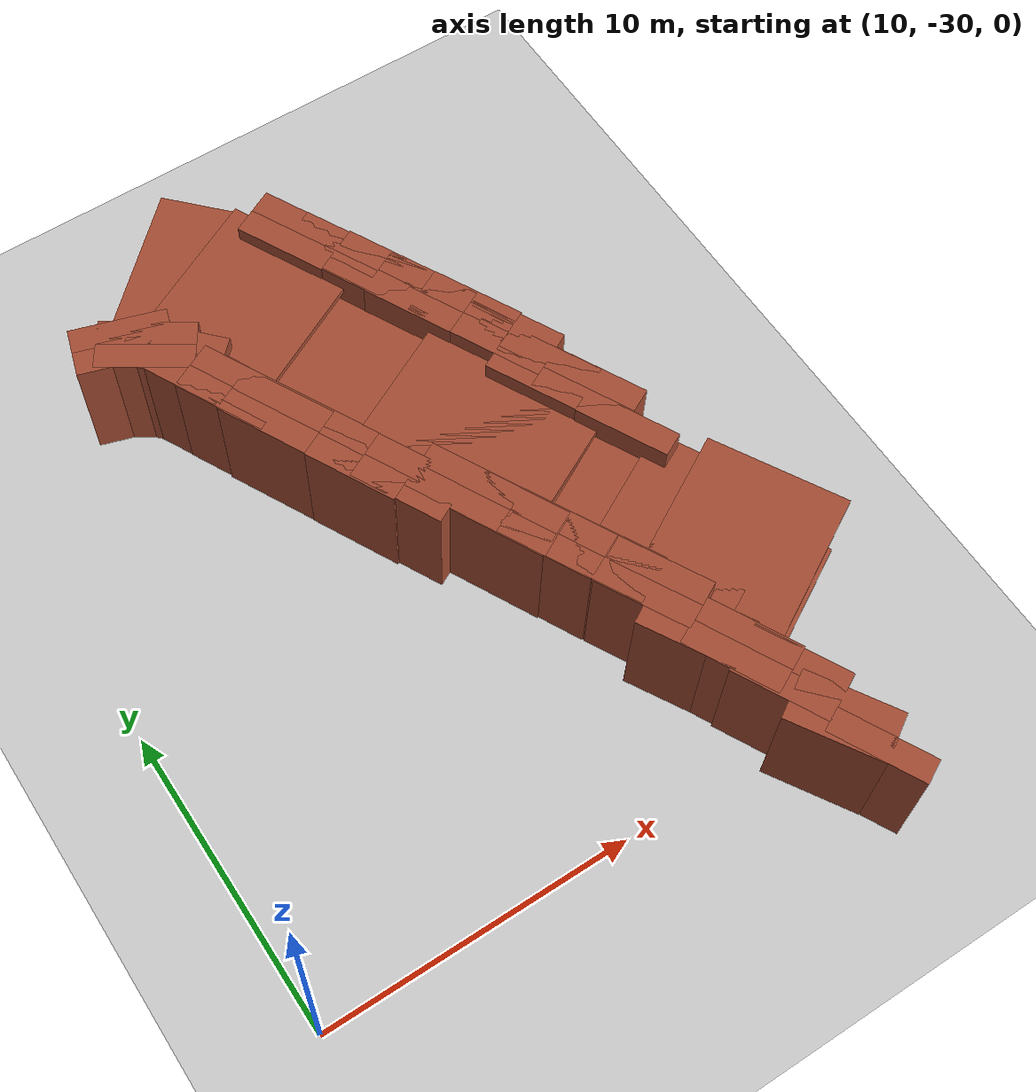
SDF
<sdf version="1.6">
 <world name="procedural_cave_world">
  <include><uri>model://sun</uri></include>
  <include><uri>model://ground_plane</uri></include>
  <model name="procedural_cave">
   <static>true</static>
   <link name="right_wall_12">
    <pose>15.39203124520622 -9.885224673144089 1.5 0 0 -0.30000000000000004</pose>
    <collision name="collision"><geometry><box><size>3.0 0.8 5.0</size></box></geometry></collision>
    <visual name="visual">
     <geometry><box><size>3.0 0.8 5.0</size></box></geometry>
     <material>
      <script><uri>file://media/materials/scripts/gazebo.material</uri><name>Gazebo/Bricks</name></script>
     </material>
    </visual>
   </link>
   <link name="fill_right_12">
    <pose>15.155615079877146 -10.649493864444572 1.5 0 0 -0.30000000000000004</pose>
    <collision name="collision"><geometry><box><size>3.0 0.8 5.0</size></box></geometry></collision>
    <visual name="visual">
     <geometry><box><size>3.0 0.8 5.0</size></box></geometry>
     <material>
      <script><uri>file://media/materials/scripts/gazebo.material</uri><name>Gazebo/Bricks</name></script>
     </material>
    </visual>
   </link>
   <link name="right_wall_13">
    <pose>16.044018681223694 -10.396611991949012 1.5 0 0 -0.5799482193392328</pose>
    <collision name="collision"><geometry><box><size>3.0 0.8 5.0</size></box></geometry></collision>
    <visual name="visual">
     <geometry><box><size>3.0 0.8 5.0</size></box></geometry>
     <material>
      <script><uri>file://media/materials/scripts/gazebo.material</uri><name>Gazebo/Bricks</name></script>
     </material>
    </visual>
   </link>
   <link name="fill_right_13">
    <pose>15.605634182448908 -11.0658048126173 1.5 0 0 -0.5799482193392328</pose>
    <collision name="collision"><geometry><box><size>3.0 0.8 5.0</size></box></geometry></collision>
    <visual name="visual">
     <geometry><box><size>3.0 0.8 5.0</size></box></geometry>
     <material>
      <script><uri>file://media/materials/scripts/gazebo.material</uri><name>Gazebo/Bricks</name></script>
     </material>
    </visual>
   </link>
   <link name="right_wall_14">
    <pose>16.69132183761761 -11.09571935512386 1.5 0 0 -0.8084657183683084</pose>
    <collision name="collision"><geometry><box><size>3.0 0.8 5.0</size></box></geometry></collision>
    <visual name="visual">
     <geometry><box><size>3.0 0.8 5.0</size></box></geometry>
     <material>
      <script><uri>file://media/materials/scripts/gazebo.material</uri><name>Gazebo/Bricks</name></script>
     </material>
    </visual>
   </link>
   <link name="fill_right_14">
    <pose>16.112739087608567 -11.648206460305484 1.5 0 0 -0.8084657183683084</pose>
    <collision name="collision"><geometry><box><size>3.0 0.8 5.0</size></box></geometry></collision>
    <visual name="visual">
     <geometry><box><size>3.0 0.8 5.0</size></box></geometry>
     <material>
      <script><uri>file://media/materials/scripts/gazebo.material</uri><name>Gazebo/Bricks</name></script>
     </material>
    </visual>
   </link>
   <link name="ceiling_14">
    <pose>18.403966095796005 -9.460319978989473 3.3997649075077114 0 0 -0.8084657183683084</pose>
    <collision name="collision"><geometry><box><size>4.5 5.736108729550944 0.2</size></box></geometry></collision>
    <visual name="visual">
     <geometry><box><size>4.5 5.736108729550944 0.2</size></box></geometry>
     <material>
      <script><uri>file://media/materials/scripts/gazebo.material</uri><name>Gazebo/Bricks</name></script>
     </material>
    </visual>
   </link>
   <link name="floor_14">
    <pose>18.403966095796005 -9.460319978989473 0.1 0 0 -0.8084657183683084</pose>
    <collision name="collision"><geometry><box><size>4.5 5.736108729550944 0.2</size></box></geometry></collision>
    <visual name="visual">
     <geometry><box><size>4.5 5.736108729550944 0.2</size></box></geometry>
     <material>
      <script><uri>file://media/materials/scripts/gazebo.material</uri><name>Gazebo/Bricks</name></script>
     </material>
    </visual>
   </link>
   <link name="left_wall_15">
    <pose>21.229944795965153 -9.705096932309226 1.5 0 0 -1.1</pose>
    <collision name="collision"><geometry><box><size>3.0 0.8 5.0</size></box></geometry></collision>
    <visual name="visual">
     <geometry><box><size>3.0 0.8 5.0</size></box></geometry>
     <material>
      <script><uri>file://media/materials/scripts/gazebo.material</uri><name>Gazebo/Bricks</name></script>
     </material>
    </visual>
   </link>
   <link name="right_wall_15">
    <pose>16.938775759903585 -11.889165105854024 1.5 0 0 -1.1</pose>
    <collision name="collision"><geometry><box><size>3.0 0.8 5.0</size></box></geometry></collision>
    <visual name="visual">
     <geometry><box><size>3.0 0.8 5.0</size></box></geometry>
     <material>
      <script><uri>file://media/materials/scripts/gazebo.material</uri><name>Gazebo/Bricks</name></script>
     </material>
    </visual>
   </link>
   <link name="fill_left_15">
    <pose>21.9429106840143 -9.342220035168765 1.5 0 0 -1.1</pose>
    <collision name="collision"><geometry><box><size>3.0 0.8 5.0</size></box></geometry></collision>
    <visual name="visual">
     <geometry><box><size>3.0 0.8 5.0</size></box></geometry>
     <material>
      <script><uri>file://media/materials/scripts/gazebo.material</uri><name>Gazebo/Bricks</name></script>
     </material>
    </visual>
   </link>
   <link name="fill_right_15">
    <pose>16.225809871854437 -12.252042002994486 1.5 0 0 -1.1</pose>
    <collision name="collision"><geometry><box><size>3.0 0.8 5.0</size></box></geometry></collision>
    <visual name="visual">
     <geometry><box><size>3.0 0.8 5.0</size></box></geometry>
     <material>
      <script><uri>file://media/materials/scripts/gazebo.material</uri><name>Gazebo/Bricks</name></script>
     </material>
    </visual>
   </link>
   <link name="ceiling_15">
    <pose>19.08436027793437 -10.797131019081625 3.399858944504627 0 0 -1.1</pose>
    <collision name="collision"><geometry><box><size>4.5 5.815006280654769 0.2</size></box></geometry></collision>
    <visual name="visual">
     <geometry><box><size>4.5 5.815006280654769 0.2</size></box></geometry>
     <material>
      <script><uri>file://media/materials/scripts/gazebo.material</uri><name>Gazebo/Bricks</name></script>
     </material>
    </visual>
   </link>
   <link name="floor_15">
    <pose>19.08436027793437 -10.797131019081625 0.1 0 0 -1.1</pose>
    <collision name="collision"><geometry><box><size>4.5 5.815006280654769 0.2</size></box></geometry></collision>
    <visual name="visual">
     <geometry><box><size>4.5 5.815006280654769 0.2</size></box></geometry>
     <material>
      <script><uri>file://media/materials/scripts/gazebo.material</uri><name>Gazebo/Bricks</name></script>
     </material>
    </visual>
   </link>
   <link name="left_wall_16">
    <pose>21.924622003105284 -11.034638368229148 1.5 0 0 -1.1</pose>
    <collision name="collision"><geometry><box><size>3.0 0.8 5.0</size></box></geometry></collision>
    <visual name="visual">
     <geometry><box><size>3.0 0.8 5.0</size></box></geometry>
     <material>
      <script><uri>file://media/materials/scripts/gazebo.material</uri><name>Gazebo/Bricks</name></script>
     </material>
    </visual>
   </link>
   <link name="right_wall_16">
    <pose>17.604886917040183 -13.233245750118408 1.5 0 0 -1.1</pose>
    <collision name="collision"><geometry><box><size>3.0 0.8 5.0</size></box></geometry></collision>
    <visual name="visual">
     <geometry><box><size>3.0 0.8 5.0</size></box></geometry>
     <material>
      <script><uri>file://media/materials/scripts/gazebo.material</uri><name>Gazebo/Bricks</name></script>
     </material>
    </visual>
   </link>
   <link name="fill_left_16">
    <pose>22.637587891154432 -10.671761471088686 1.5 0 0 -1.1</pose>
    <collision name="collision"><geometry><box><size>3.0 0.8 5.0</size></box></geometry></collision>
    <visual name="visual">
     <geometry><box><size>3.0 0.8 5.0</size></box></geometry>
     <material>
      <script><uri>file://media/materials/scripts/gazebo.material</uri><name>Gazebo/Bricks</name></script>
     </material>
    </visual>
   </link>
   <link name="fill_right_16">
    <pose>16.891921028991035 -13.59612264725887 1.5 0 0 -1.1</pose>
    <collision name="collision"><geometry><box><size>3.0 0.8 5.0</size></box></geometry></collision>
    <visual name="visual">
     <geometry><box><size>3.0 0.8 5.0</size></box></geometry>
     <material>
      <script><uri>file://media/materials/scripts/gazebo.material</uri><name>Gazebo/Bricks</name></script>
     </material>
    </visual>
   </link>
   <link name="ceiling_16">
    <pose>19.764754460072734 -12.133942059173778 2.3920610211163402 0 0 -1.1</pose>
    <collision name="collision"><geometry><box><size>4.5 5.847059483179449 0.2</size></box></geometry></collision>
    <visual name="visual">
     <geometry><box><size>4.5 5.847059483179449 0.2</size></box></geometry>
     <material>
      <script><uri>file://media/materials/scripts/gazebo.material</uri><name>Gazebo/Bricks</name></script>
     </material>
    </visual>
   </link>
   <link name="floor_16">
    <pose>19.764754460072734 -12.133942059173778 0.1 0 0 -1.1</pose>
    <collision name="collision"><geometry><box><size>4.5 5.847059483179449 0.2</size></box></geometry></collision>
    <visual name="visual">
     <geometry><box><size>4.5 5.847059483179449 0.2</size></box></geometry>
     <material>
      <script><uri>file://media/materials/scripts/gazebo.material</uri><name>Gazebo/Bricks</name></script>
     </material>
    </visual>
   </link>
   <link name="left_wall_17">
    <pose>22.64378268813697 -12.351718494796941 1.5 0 0 -1.1</pose>
    <collision name="collision"><geometry><box><size>3.0 0.8 5.0</size></box></geometry></collision>
    <visual name="visual">
     <geometry><box><size>3.0 0.8 5.0</size></box></geometry>
     <material>
      <script><uri>file://media/materials/scripts/gazebo.material</uri><name>Gazebo/Bricks</name></script>
     </material>
    </visual>
   </link>
   <link name="right_wall_17">
    <pose>18.246514596285227 -14.58978770373492 1.5 0 0 -1.1</pose>
    <collision name="collision"><geometry><box><size>3.0 0.8 5.0</size></box></geometry></collision>
    <visual name="visual">
     <geometry><box><size>3.0 0.8 5.0</size></box></geometry>
     <material>
      <script><uri>file://media/materials/scripts/gazebo.material</uri><name>Gazebo/Bricks</name></script>
     </material>
    </visual>
   </link>
   <link name="fill_left_17">
    <pose>23.35674857618612 -11.98884159765648 1.5 0 0 -1.1</pose>
    <collision name="collision"><geometry><box><size>3.0 0.8 5.0</size></box></geometry></collision>
    <visual name="visual">
     <geometry><box><size>3.0 0.8 5.0</size></box></geometry>
     <material>
      <script><uri>file://media/materials/scripts/gazebo.material</uri><name>Gazebo/Bricks</name></script>
     </material>
    </visual>
   </link>
   <link name="fill_right_17">
    <pose>17.533548708236076 -14.952664600875382 1.5 0 0 -1.1</pose>
    <collision name="collision"><geometry><box><size>3.0 0.8 5.0</size></box></geometry></collision>
    <visual name="visual">
     <geometry><box><size>3.0 0.8 5.0</size></box></geometry>
     <material>
      <script><uri>file://media/materials/scripts/gazebo.material</uri><name>Gazebo/Bricks</name></script>
     </material>
    </visual>
   </link>
   <link name="ceiling_17">
    <pose>20.445148642211098 -13.47075309926593 2.7952366126698043 0 0 -1.1</pose>
    <collision name="collision"><geometry><box><size>4.5 5.934057200277855 0.2</size></box></geometry></collision>
    <visual name="visual">
     <geometry><box><size>4.5 5.934057200277855 0.2</size></box></geometry>
     <material>
      <script><uri>file://media/materials/scripts/gazebo.material</uri><name>Gazebo/Bricks</name></script>
     </material>
    </visual>
   </link>
   <link name="floor_17">
    <pose>20.445148642211098 -13.47075309926593 0.1 0 0 -1.1</pose>
    <collision name="collision"><geometry><box><size>4.5 5.934057200277855 0.2</size></box></geometry></collision>
    <visual name="visual">
     <geometry><box><size>4.5 5.934057200277855 0.2</size></box></geometry>
     <material>
      <script><uri>file://media/materials/scripts/gazebo.material</uri><name>Gazebo/Bricks</name></script>
     </material>
    </visual>
   </link>
   <link name="left_wall_18">
    <pose>23.27407605606168 -13.714029251370354 1.5 0 0 -1.1</pose>
    <collision name="collision"><geometry><box><size>3.0 0.8 5.0</size></box></geometry></collision>
    <visual name="visual">
     <geometry><box><size>3.0 0.8 5.0</size></box></geometry>
     <material>
      <script><uri>file://media/materials/scripts/gazebo.material</uri><name>Gazebo/Bricks</name></script>
     </material>
    </visual>
   </link>
   <link name="right_wall_18">
    <pose>18.977009592637245 -15.901099027345813 1.5 0 0 -1.1</pose>
    <collision name="collision"><geometry><box><size>3.0 0.8 5.0</size></box></geometry></collision>
    <visual name="visual">
     <geometry><box><size>3.0 0.8 5.0</size></box></geometry>
     <material>
      <script><uri>file://media/materials/scripts/gazebo.material</uri><name>Gazebo/Bricks</name></script>
     </material>
    </visual>
   </link>
   <link name="fill_left_18">
    <pose>23.98704194411083 -13.35115235422989 1.5 0 0 -1.1</pose>
    <collision name="collision"><geometry><box><size>3.0 0.8 5.0</size></box></geometry></collision>
    <visual name="visual">
     <geometry><box><size>3.0 0.8 5.0</size></box></geometry>
     <material>
      <script><uri>file://media/materials/scripts/gazebo.material</uri><name>Gazebo/Bricks</name></script>
     </material>
    </visual>
   </link>
   <link name="fill_right_18">
    <pose>18.264043704588097 -16.263975924486274 1.5 0 0 -1.1</pose>
    <collision name="collision"><geometry><box><size>3.0 0.8 5.0</size></box></geometry></collision>
    <visual name="visual">
     <geometry><box><size>3.0 0.8 5.0</size></box></geometry>
     <material>
      <script><uri>file://media/materials/scripts/gazebo.material</uri><name>Gazebo/Bricks</name></script>
     </material>
    </visual>
   </link>
   <link name="ceiling_18">
    <pose>21.125542824349463 -14.807564139358083 2.0992315779937027 0 0 -1.1</pose>
    <collision name="collision"><geometry><box><size>4.5 5.821623626546592 0.2</size></box></geometry></collision>
    <visual name="visual">
     <geometry><box><size>4.5 5.821623626546592 0.2</size></box></geometry>
     <material>
      <script><uri>file://media/materials/scripts/gazebo.material</uri><name>Gazebo/Bricks</name></script>
     </material>
    </visual>
   </link>
   <link name="floor_18">
    <pose>21.125542824349463 -14.807564139358083 0.737619824592124 0 0 -1.1</pose>
    <collision name="collision"><geometry><box><size>4.5 5.821623626546592 0.2</size></box></geometry></collision>
    <visual name="visual">
     <geometry><box><size>4.5 5.821623626546592 0.2</size></box></geometry>
     <material>
      <script><uri>file://media/materials/scripts/gazebo.material</uri><name>Gazebo/Bricks</name></script>
     </material>
    </visual>
   </link>
   <link name="left_wall_19">
    <pose>24.018555482704706 -15.018222945993188 1.5 0 0 -1.1</pose>
    <collision name="collision"><geometry><box><size>3.0 0.8 5.0</size></box></geometry></collision>
    <visual name="visual">
     <geometry><box><size>3.0 0.8 5.0</size></box></geometry>
     <material>
      <script><uri>file://media/materials/scripts/gazebo.material</uri><name>Gazebo/Bricks</name></script>
     </material>
    </visual>
   </link>
   <link name="right_wall_19">
    <pose>19.59331853027095 -17.270527412907285 1.5 0 0 -1.1</pose>
    <collision name="collision"><geometry><box><size>3.0 0.8 5.0</size></box></geometry></collision>
    <visual name="visual">
     <geometry><box><size>3.0 0.8 5.0</size></box></geometry>
     <material>
      <script><uri>file://media/materials/scripts/gazebo.material</uri><name>Gazebo/Bricks</name></script>
     </material>
    </visual>
   </link>
   <link name="fill_left_19">
    <pose>24.731521370753853 -14.655346048852724 1.5 0 0 -1.1</pose>
    <collision name="collision"><geometry><box><size>3.0 0.8 5.0</size></box></geometry></collision>
    <visual name="visual">
     <geometry><box><size>3.0 0.8 5.0</size></box></geometry>
     <material>
      <script><uri>file://media/materials/scripts/gazebo.material</uri><name>Gazebo/Bricks</name></script>
     </material>
    </visual>
   </link>
   <link name="fill_right_19">
    <pose>18.8803526422218 -17.633404310047748 1.5 0 0 -1.1</pose>
    <collision name="collision"><geometry><box><size>3.0 0.8 5.0</size></box></geometry></collision>
    <visual name="visual">
     <geometry><box><size>3.0 0.8 5.0</size></box></geometry>
     <material>
      <script><uri>file://media/materials/scripts/gazebo.material</uri><name>Gazebo/Bricks</name></script>
     </material>
    </visual>
   </link>
   <link name="ceiling_19">
    <pose>21.805937006487827 -16.144375179450236 2.619538946796222 0 0 -1.1</pose>
    <collision name="collision"><geometry><box><size>4.5 5.965440312486535 0.2</size></box></geometry></collision>
    <visual name="visual">
     <geometry><box><size>4.5 5.965440312486535 0.2</size></box></geometry>
     <material>
      <script><uri>file://media/materials/scripts/gazebo.material</uri><name>Gazebo/Bricks</name></script>
     </material>
    </visual>
   </link>
   <link name="floor_19">
    <pose>21.805937006487827 -16.144375179450236 0.4825718947552744 0 0 -1.1</pose>
    <collision name="collision"><geometry><box><size>4.5 5.965440312486535 0.2</size></box></geometry></collision>
    <visual name="visual">
     <geometry><box><size>4.5 5.965440312486535 0.2</size></box></geometry>
     <material>
      <script><uri>file://media/materials/scripts/gazebo.material</uri><name>Gazebo/Bricks</name></script>
     </material>
    </visual>
   </link>
   <link name="left_wall_20">
    <pose>24.643169281528763 -16.383424422090332 1.5 0 0 -1.1</pose>
    <collision name="collision"><geometry><box><size>3.0 0.8 5.0</size></box></geometry></collision>
    <visual name="visual">
     <geometry><box><size>3.0 0.8 5.0</size></box></geometry>
     <material>
      <script><uri>file://media/materials/scripts/gazebo.material</uri><name>Gazebo/Bricks</name></script>
     </material>
    </visual>
   </link>
   <link name="right_wall_20">
    <pose>20.32949309572362 -18.57894801699445 1.5 0 0 -1.1</pose>
    <collision name="collision"><geometry><box><size>3.0 0.8 5.0</size></box></geometry></collision>
    <visual name="visual">
     <geometry><box><size>3.0 0.8 5.0</size></box></geometry>
     <material>
      <script><uri>file://media/materials/scripts/gazebo.material</uri><name>Gazebo/Bricks</name></script>
     </material>
    </visual>
   </link>
   <link name="fill_left_20">
    <pose>25.356135169577914 -16.02054752494987 1.5 0 0 -1.1</pose>
    <collision name="collision"><geometry><box><size>3.0 0.8 5.0</size></box></geometry></collision>
    <visual name="visual">
     <geometry><box><size>3.0 0.8 5.0</size></box></geometry>
     <material>
      <script><uri>file://media/materials/scripts/gazebo.material</uri><name>Gazebo/Bricks</name></script>
     </material>
    </visual>
   </link>
   <link name="fill_right_20">
    <pose>19.61652720767447 -18.941824914134912 1.5 0 0 -1.1</pose>
    <collision name="collision"><geometry><box><size>3.0 0.8 5.0</size></box></geometry></collision>
    <visual name="visual">
     <geometry><box><size>3.0 0.8 5.0</size></box></geometry>
     <material>
      <script><uri>file://media/materials/scripts/gazebo.material</uri><name>Gazebo/Bricks</name></script>
     </material>
    </visual>
   </link>
   <link name="ceiling_20">
    <pose>22.486331188626192 -17.48118621954239 3.321953894679622 0 0 -1.1</pose>
    <collision name="collision">
     <geometry><box><size>4.5 5.8402609528581335 0.2</size></box></geometry>
    </collision>
    <visual name="visual">
     <geometry><box><size>4.5 5.8402609528581335 0.2</size></box></geometry>
     <material>
      <script><uri>file://media/materials/scripts/gazebo.material</uri><name>Gazebo/Bricks</name></script>
     </material>
    </visual>
   </link>
   <link name="floor_20">
    <pose>22.486331188626192 -17.48118621954239 1.5314176031403701 0 0 -1.1</pose>
    <collision name="collision">
     <geometry><box><size>4.5 5.8402609528581335 0.2</size></box></geometry>
    </collision>
    <visual name="visual">
     <geometry><box><size>4.5 5.8402609528581335 0.2</size></box></geometry>
     <material>
      <script><uri>file://media/materials/scripts/gazebo.material</uri><name>Gazebo/Bricks</name></script>
     </material>
    </visual>
   </link>
   <link name="obs_slab_20">
    <pose>21.407912142174904 -18.03006711826842 2.914799115586254 0 0 -1.1</pose>
    <collision name="collision">
     <geometry><box><size>0.3 1.3716517431418356 0.1664580791618715</size></box></geometry>
    </collision>
    <visual name="visual">
     <geometry><box><size>0.3 1.3716517431418356 0.1664580791618715</size></box></geometry>
     <material>
      <script><uri>file://media/materials/scripts/gazebo.material</uri><name>Gazebo/Wood</name></script>
     </material>
    </visual>
   </link>
   <link name="left_wall_21">
    <pose>24.876625357091875 -17.947712703445227 1.5 0 0 -1.1</pose>
    <collision name="collision"><geometry><box><size>3.0 0.8 5.0</size></box></geometry></collision>
    <visual name="visual">
     <geometry><box><size>3.0 0.8 5.0</size></box></geometry>
     <material>
      <script><uri>file://media/materials/scripts/gazebo.material</uri><name>Gazebo/Bricks</name></script>
     </material>
    </visual>
   </link>
   <link name="right_wall_21">
    <pose>21.456825384437238 -19.688281815823863 1.5 0 0 -1.1</pose>
    <collision name="collision"><geometry><box><size>3.0 0.8 5.0</size></box></geometry></collision>
    <visual name="visual">
     <geometry><box><size>3.0 0.8 5.0</size></box></geometry>
     <material>
      <script><uri>file://media/materials/scripts/gazebo.material</uri><name>Gazebo/Bricks</name></script>
     </material>
    </visual>
   </link>
   <link name="fill_left_21">
    <pose>25.589591245141023 -17.584835806304767 1.5 0 0 -1.1</pose>
    <collision name="collision"><geometry><box><size>3.0 0.8 5.0</size></box></geometry></collision>
    <visual name="visual">
     <geometry><box><size>3.0 0.8 5.0</size></box></geometry>
     <material>
      <script><uri>file://media/materials/scripts/gazebo.material</uri><name>Gazebo/Bricks</name></script>
     </material>
    </visual>
   </link>
   <link name="fill_right_21">
    <pose>20.74385949638809 -20.051158712964323 1.5 0 0 -1.1</pose>
    <collision name="collision"><geometry><box><size>3.0 0.8 5.0</size></box></geometry></collision>
    <visual name="visual">
     <geometry><box><size>3.0 0.8 5.0</size></box></geometry>
     <material>
      <script><uri>file://media/materials/scripts/gazebo.material</uri><name>Gazebo/Bricks</name></script>
     </material>
    </visual>
   </link>
   <link name="ceiling_21">
    <pose>23.166725370764556 -18.817997259634545 3.321953894679622 0 0 -1.1</pose>
    <collision name="collision"><geometry><box><size>4.5 4.837266304015817 0.2</size></box></geometry></collision>
    <visual name="visual">
     <geometry><box><size>4.5 4.837266304015817 0.2</size></box></geometry>
     <material>
      <script><uri>file://media/materials/scripts/gazebo.material</uri><name>Gazebo/Bricks</name></script>
     </material>
    </visual>
   </link>
   <link name="floor_21">
    <pose>23.166725370764556 -18.817997259634545 0.958850561884222 0 0 -1.1</pose>
    <collision name="collision"><geometry><box><size>4.5 4.837266304015817 0.2</size></box></geometry></collision>
    <visual name="visual">
     <geometry><box><size>4.5 4.837266304015817 0.2</size></box></geometry>
     <material>
      <script><uri>file://media/materials/scripts/gazebo.material</uri><name>Gazebo/Bricks</name></script>
     </material>
    </visual>
   </link>
   <link name="left_wall_22">
    <pose>25.57046740586334 -19.277679208337624 1.5 0 0 -1.1</pose>
    <collision name="collision"><geometry><box><size>3.0 0.8 5.0</size></box></geometry></collision>
    <visual name="visual">
     <geometry><box><size>3.0 0.8 5.0</size></box></geometry>
     <material>
      <script><uri>file://media/materials/scripts/gazebo.material</uri><name>Gazebo/Bricks</name></script>
     </material>
    </visual>
   </link>
   <link name="right_wall_22">
    <pose>22.123771699942502 -21.031937391115775 1.5 0 0 -1.1</pose>
    <collision name="collision"><geometry><box><size>3.0 0.8 5.0</size></box></geometry></collision>
    <visual name="visual">
     <geometry><box><size>3.0 0.8 5.0</size></box></geometry>
     <material>
      <script><uri>file://media/materials/scripts/gazebo.material</uri><name>Gazebo/Bricks</name></script>
     </material>
    </visual>
   </link>
   <link name="fill_left_22">
    <pose>26.28343329391249 -18.914802311197164 1.5 0 0 -1.1</pose>
    <collision name="collision"><geometry><box><size>3.0 0.8 5.0</size></box></geometry></collision>
    <visual name="visual">
     <geometry><box><size>3.0 0.8 5.0</size></box></geometry>
     <material>
      <script><uri>file://media/materials/scripts/gazebo.material</uri><name>Gazebo/Bricks</name></script>
     </material>
    </visual>
   </link>
   <link name="fill_right_22">
    <pose>21.41080581189335 -21.394814288256235 1.5 0 0 -1.1</pose>
    <collision name="collision"><geometry><box><size>3.0 0.8 5.0</size></box></geometry></collision>
    <visual name="visual">
     <geometry><box><size>3.0 0.8 5.0</size></box></geometry>
     <material>
      <script><uri>file://media/materials/scripts/gazebo.material</uri><name>Gazebo/Bricks</name></script>
     </material>
    </visual>
   </link>
   <link name="ceiling_22">
    <pose>23.84711955290292 -20.1548082997267 2.3043991705964637 0 0 -1.1</pose>
    <collision name="collision">
     <geometry><box><size>4.5 4.8674452886960475 0.2</size></box></geometry>
    </collision>
    <visual name="visual">
     <geometry><box><size>4.5 4.8674452886960475 0.2</size></box></geometry>
     <material>
      <script><uri>file://media/materials/scripts/gazebo.material</uri><name>Gazebo/Bricks</name></script>
     </material>
    </visual>
   </link>
   <link name="floor_22">
    <pose>23.84711955290292 -20.1548082997267 0.1858850561884222 0 0 -1.1</pose>
    <collision name="collision">
     <geometry><box><size>4.5 4.8674452886960475 0.2</size></box></geometry>
    </collision>
    <visual name="visual">
     <geometry><box><size>4.5 4.8674452886960475 0.2</size></box></geometry>
     <material>
      <script><uri>file://media/materials/scripts/gazebo.material</uri><name>Gazebo/Bricks</name></script>
     </material>
    </visual>
   </link>
   <link name="left_wall_23">
    <pose>26.219070178581536 -20.63067106184524 1.5 0 0 -1.1</pose>
    <collision name="collision"><geometry><box><size>3.0 0.8 5.0</size></box></geometry></collision>
    <visual name="visual">
     <geometry><box><size>3.0 0.8 5.0</size></box></geometry>
     <material>
      <script><uri>file://media/materials/scripts/gazebo.material</uri><name>Gazebo/Bricks</name></script>
     </material>
    </visual>
   </link>
   <link name="right_wall_23">
    <pose>22.835957291501035 -22.352567617792467 1.5 0 0 -1.1</pose>
    <collision name="collision"><geometry><box><size>3.0 0.8 5.0</size></box></geometry></collision>
    <visual name="visual">
     <geometry><box><size>3.0 0.8 5.0</size></box></geometry>
     <material>
      <script><uri>file://media/materials/scripts/gazebo.material</uri><name>Gazebo/Bricks</name></script>
     </material>
    </visual>
   </link>
   <link name="fill_right_23">
    <pose>22.122991403451884 -22.715444514932926 1.5 0 0 -1.1</pose>
    <collision name="collision"><geometry><box><size>3.0 0.8 5.0</size></box></geometry></collision>
    <visual name="visual">
     <geometry><box><size>3.0 0.8 5.0</size></box></geometry>
     <material>
      <script><uri>file://media/materials/scripts/gazebo.material</uri><name>Gazebo/Bricks</name></script>
     </material>
    </visual>
   </link>
   <link name="ceiling_23">
    <pose>24.527513735041286 -21.491619339818854 2.742639502357878 0 0 -1.1</pose>
    <collision name="collision">
     <geometry><box><size>4.5 4.7961007041585555 0.2</size></box></geometry>
    </collision>
    <visual name="visual">
     <geometry><box><size>4.5 4.7961007041585555 0.2</size></box></geometry>
     <material>
      <script><uri>file://media/materials/scripts/gazebo.material</uri><name>Gazebo/Bricks</name></script>
     </material>
    </visual>
   </link>
   <link name="floor_23">
    <pose>24.527513735041286 -21.491619339818854 0.15153103371305332 0 0 -1.1</pose>
    <collision name="collision">
     <geometry><box><size>4.5 4.7961007041585555 0.2</size></box></geometry>
    </collision>
    <visual name="visual">
     <geometry><box><size>4.5 4.7961007041585555 0.2</size></box></geometry>
     <material>
      <script><uri>file://media/materials/scripts/gazebo.material</uri><name>Gazebo/Bricks</name></script>
     </material>
    </visual>
   </link>
   <link name="right_wall_24">
    <pose>23.564921044574525 -23.70651792076942 1.5 0 0 -1.080132154325896</pose>
    <collision name="collision"><geometry><box><size>3.0 0.8 5.0</size></box></geometry></collision>
    <visual name="visual">
     <geometry><box><size>3.0 0.8 5.0</size></box></geometry>
     <material>
      <script><uri>file://media/materials/scripts/gazebo.material</uri><name>Gazebo/Bricks</name></script>
     </material>
    </visual>
   </link>
   <link name="fill_right_24">
    <pose>22.85930497476219 -24.083487365184478 1.5 0 0 -1.080132154325896</pose>
    <collision name="collision"><geometry><box><size>3.0 0.8 5.0</size></box></geometry></collision>
    <visual name="visual">
     <geometry><box><size>3.0 0.8 5.0</size></box></geometry>
     <material>
      <script><uri>file://media/materials/scripts/gazebo.material</uri><name>Gazebo/Bricks</name></script>
     </material>
    </visual>
   </link>
   <link name="ceiling_24">
    <pose>25.23433144331952 -22.81464947071698 3.005583701414727 0 0 -1.080132154325896</pose>
    <collision name="collision"><geometry><box><size>4.5 4.785424896434675 0.2</size></box></geometry></collision>
    <visual name="visual">
     <geometry><box><size>4.5 4.785424896434675 0.2</size></box></geometry>
     <material>
      <script><uri>file://media/materials/scripts/gazebo.material</uri><name>Gazebo/Bricks</name></script>
     </material>
    </visual>
   </link>
   <link name="floor_24">
    <pose>25.23433144331952 -22.81464947071698 0.130918620227832 0 0 -1.080132154325896</pose>
    <collision name="collision"><geometry><box><size>4.5 4.785424896434675 0.2</size></box></geometry></collision>
    <visual name="visual">
     <geometry><box><size>4.5 4.785424896434675 0.2</size></box></geometry>
     <material>
      <script><uri>file://media/materials/scripts/gazebo.material</uri><name>Gazebo/Bricks</name></script>
     </material>
    </visual>
   </link>
   <link name="obs_stone_24">
    <pose>25.23433144331952 -21.411181294730195 0.3646310184900178 0 0 0.2579203049736199</pose>
    <collision name="collision">
     <geometry><box><size>0.4133074719976755 0.33324388598655535 0.6674247965243716</size></box></geometry>
    </collision>
    <visual name="visual">
     <geometry><box><size>0.40935521700590893 0.2726106311652099 0.6674247965243716</size></box></geometry>
     <material>
      <script><uri>file://media/materials/scripts/gazebo.material</uri><name>Gazebo/Wood</name></script>
     </material>
    </visual>
   </link>
   <link name="right_wall_25">
    <pose>24.2362951039579 -25.043020441878127 1.5 0 0 -1.0826308138403768</pose>
    <collision name="collision"><geometry><box><size>3.0 0.8 5.0</size></box></geometry></collision>
    <visual name="visual">
     <geometry><box><size>3.0 0.8 5.0</size></box></geometry>
     <material>
      <script><uri>file://media/materials/scripts/gazebo.material</uri><name>Gazebo/Bricks</name></script>
     </material>
    </visual>
   </link>
   <link name="fill_right_25">
    <pose>23.52973931952176 -25.41822561705543 1.5 0 0 -1.0826308138403768</pose>
    <collision name="collision"><geometry><box><size>3.0 0.8 5.0</size></box></geometry></collision>
    <visual name="visual">
     <geometry><box><size>3.0 0.8 5.0</size></box></geometry>
     <material>
      <script><uri>file://media/materials/scripts/gazebo.material</uri><name>Gazebo/Bricks</name></script>
     </material>
    </visual>
   </link>
   <link name="ceiling_25">
    <pose>25.93784114677696 -24.139441566534742 3.163350220848836 0 0 -1.0826308138403768</pose>
    <collision name="collision"><geometry><box><size>4.5 4.853161673119896 0.2</size></box></geometry></collision>
    <visual name="visual">
     <geometry><box><size>4.5 4.853161673119896 0.2</size></box></geometry>
     <material>
      <script><uri>file://media/materials/scripts/gazebo.material</uri><name>Gazebo/Bricks</name></script>
     </material>
    </visual>
   </link>
   <link name="floor_25">
    <pose>25.93784114677696 -24.139441566534742 0.11855117213669919 0 0 -1.0826308138403768</pose>
    <collision name="collision"><geometry><box><size>4.5 4.853161673119896 0.2</size></box></geometry></collision>
    <visual name="visual">
     <geometry><box><size>4.5 4.853161673119896 0.2</size></box></geometry>
     <material>
      <script><uri>file://media/materials/scripts/gazebo.material</uri><name>Gazebo/Bricks</name></script>
     </material>
    </visual>
   </link>
   <link name="right_wall_26">
    <pose>24.491035292749793 -26.67517278919373 1.5 0 0 -1.0581000183696452</pose>
    <collision name="collision"><geometry><box><size>3.0 0.8 5.0</size></box></geometry></collision>
    <visual name="visual">
     <geometry><box><size>3.0 0.8 5.0</size></box></geometry>
     <material>
      <script><uri>file://media/materials/scripts/gazebo.material</uri><name>Gazebo/Bricks</name></script>
     </material>
    </visual>
   </link>
   <link name="fill_right_26">
    <pose>23.79389524446341 -27.06759571548023 1.5 0 0 -1.0581000183696452</pose>
    <collision name="collision"><geometry><box><size>3.0 0.8 5.0</size></box></geometry></collision>
    <visual name="visual">
     <geometry><box><size>3.0 0.8 5.0</size></box></geometry>
     <material>
      <script><uri>file://media/materials/scripts/gazebo.material</uri><name>Gazebo/Bricks</name></script>
     </material>
    </visual>
   </link>
   <link name="ceiling_26">
    <pose>26.673634133564146 -25.44657915707171 3.163350220848836 0 0 -1.0581000183696452</pose>
    <collision name="collision"><geometry><box><size>4.5 6.00926342402351 0.2</size></box></geometry></collision>
    <visual name="visual">
     <geometry><box><size>4.5 6.00926342402351 0.2</size></box></geometry>
     <material>
      <script><uri>file://media/materials/scripts/gazebo.material</uri><name>Gazebo/Bricks</name></script>
     </material>
    </visual>
   </link>
   <link name="floor_26">
    <pose>26.673634133564146 -25.44657915707171 0.11113070328201952 0 0 -1.0581000183696452</pose>
    <collision name="collision"><geometry><box><size>4.5 6.00926342402351 0.2</size></box></geometry></collision>
    <visual name="visual">
     <geometry><box><size>4.5 6.00926342402351 0.2</size></box></geometry>
     <material>
      <script><uri>file://media/materials/scripts/gazebo.material</uri><name>Gazebo/Bricks</name></script>
     </material>
    </visual>
   </link>
   <link name="right_wall_27">
    <pose>25.148463931829223 -27.905952122606617 1.5 0 0 -1.1</pose>
    <collision name="collision"><geometry><box><size>3.0 0.8 5.0</size></box></geometry></collision>
    <visual name="visual">
     <geometry><box><size>3.0 0.8 5.0</size></box></geometry>
     <material>
      <script><uri>file://media/materials/scripts/gazebo.material</uri><name>Gazebo/Bricks</name></script>
     </material>
    </visual>
   </link>
   <link name="fill_right_27">
    <pose>24.435498043780076 -28.268829019747077 1.5 0 0 -1.1</pose>
    <collision name="collision"><geometry><box><size>3.0 0.8 5.0</size></box></geometry></collision>
    <visual name="visual">
     <geometry><box><size>3.0 0.8 5.0</size></box></geometry>
     <material>
      <script><uri>file://media/materials/scripts/gazebo.material</uri><name>Gazebo/Bricks</name></script>
     </material>
    </visual>
   </link>
   <link name="right_wall_28">
    <pose>25.779338750704632 -29.282367115088075 1.5 0 0 -1.0949488383519181</pose>
    <collision name="collision"><geometry><box><size>3.0 0.8 5.0</size></box></geometry></collision>
    <visual name="visual">
     <geometry><box><size>3.0 0.8 5.0</size></box></geometry>
     <material>
      <script><uri>file://media/materials/scripts/gazebo.material</uri><name>Gazebo/Bricks</name></script>
     </material>
    </visual>
   </link>
   <link name="fill_right_28">
    <pose>25.068214900096827 -29.648840673611378 1.5 0 0 -1.0949488383519181</pose>
    <collision name="collision"><geometry><box><size>3.0 0.8 5.0</size></box></geometry></collision>
    <visual name="visual">
     <geometry><box><size>3.0 0.8 5.0</size></box></geometry>
     <material>
      <script><uri>file://media/materials/scripts/gazebo.material</uri><name>Gazebo/Bricks</name></script>
     </material>
    </visual>
   </link>
   <link name="right_wall_29">
    <pose>26.17217562716338 -31.022544300847336 1.5 0 0 -1.020678863927704</pose>
    <collision name="collision"><geometry><box><size>3.0 0.8 5.0</size></box></geometry></collision>
    <visual name="visual">
     <geometry><box><size>3.0 0.8 5.0</size></box></geometry>
     <material>
      <script><uri>file://media/materials/scripts/gazebo.material</uri><name>Gazebo/Bricks</name></script>
     </material>
    </visual>
   </link>
   <link name="fill_right_29">
    <pose>25.490205131293198 -31.44077419308673 1.5 0 0 -1.020678863927704</pose>
    <collision name="collision"><geometry><box><size>3.0 0.8 5.0</size></box></geometry></collision>
    <visual name="visual">
     <geometry><box><size>3.0 0.8 5.0</size></box></geometry>
     <material>
      <script><uri>file://media/materials/scripts/gazebo.material</uri><name>Gazebo/Bricks</name></script>
     </material>
    </visual>
   </link>
   <link name="fill_right_30">
    <pose>26.148192887031755 -32.44113827641641 1.5 0 0 -1.1</pose>
    <collision name="collision"><geometry><box><size>3.0 0.8 5.0</size></box></geometry></collision>
    <visual name="visual">
     <geometry><box><size>3.0 0.8 5.0</size></box></geometry>
     <material>
      <script><uri>file://media/materials/scripts/gazebo.material</uri><name>Gazebo/Bricks</name></script>
     </material>
    </visual>
   </link>
  </model>
 </world>
</sdf>
